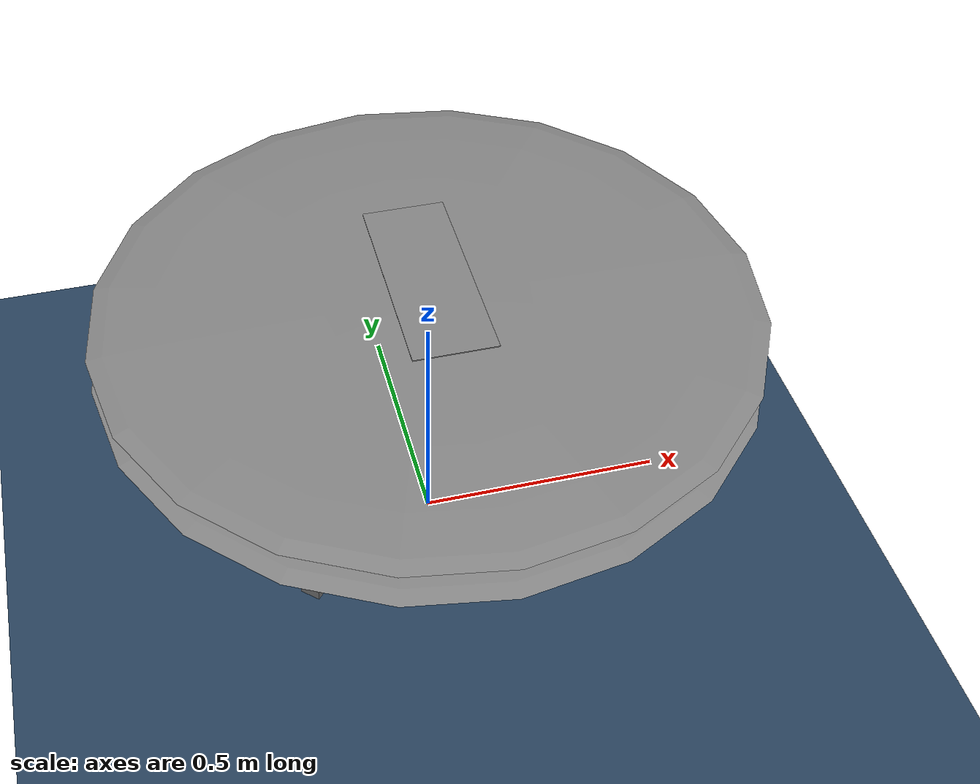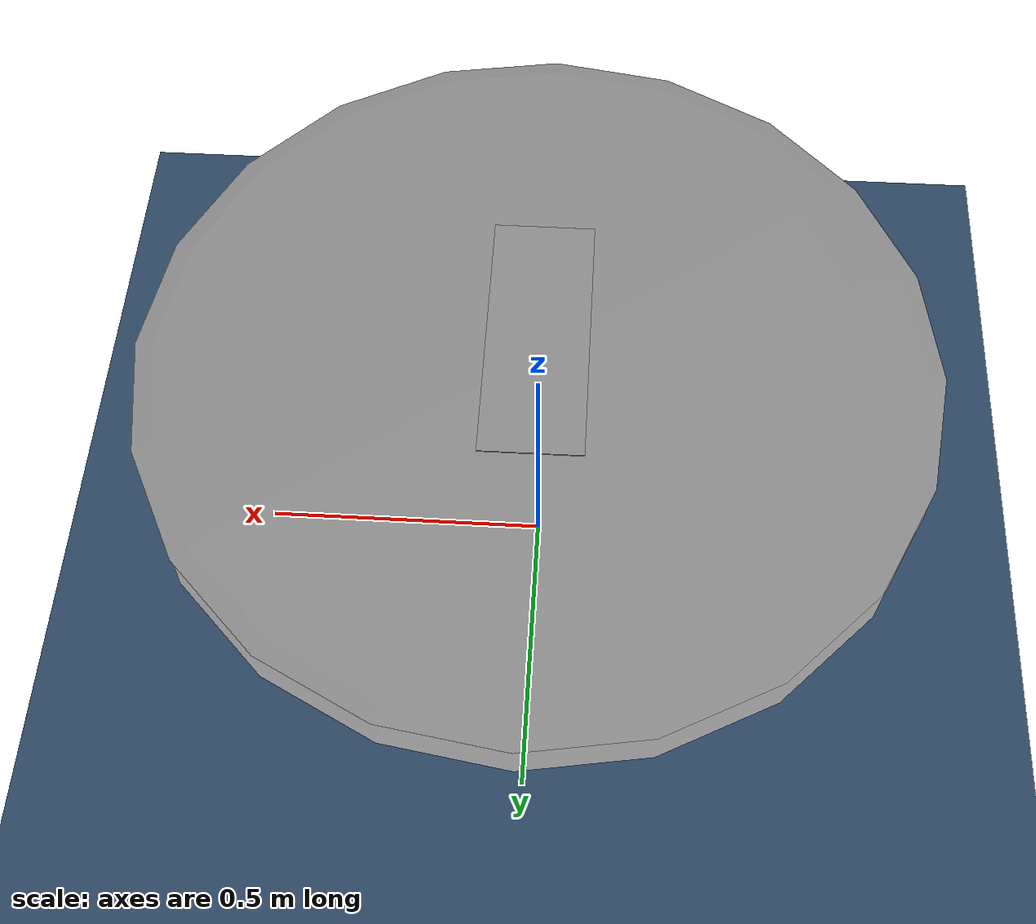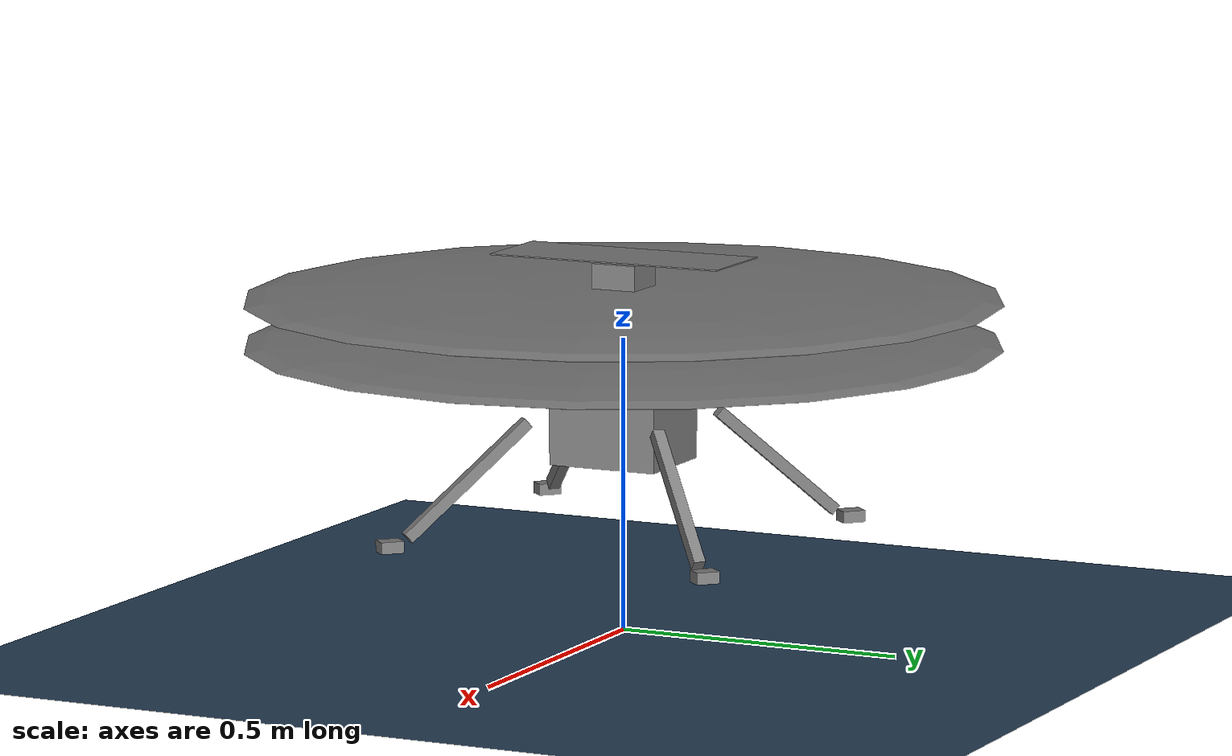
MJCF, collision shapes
<mujoco model="Ingenuity scene">
  <include file="mhs.xml"/>

  <statistic center="0 0 0.1" extent="0.6" meansize=".05"/>

  <visual>
    <headlight diffuse="0.6 0.6 0.6" ambient="0.3 0.3 0.3" specular="0 0 0"/>
    <rgba haze="0.15 0.25 0.35 1"/>
    <global azimuth="-20" elevation="-20" ellipsoidinertia="true"/>
  </visual>

  <asset>
    <texture type="skybox" builtin="gradient" rgb1="0.3 0.5 0.7" rgb2="0 0 0" width="512" height="3072"/>
    <texture type="2d" name="groundplane" builtin="checker" mark="edge" rgb1="0.2 0.3 0.4" rgb2="0.1 0.2 0.3"
      markrgb="0.8 0.8 0.8" width="300" height="300"/>
    <material name="groundplane" texture="groundplane" texuniform="true" texrepeat="5 5" reflectance="0.2"/>
  </asset>

  <worldbody>
    <light pos="0 0 1.5" dir="0 0 -1" directional="true"/>
    <geom name="floor" size="0 0 0.05" type="plane" material="groundplane"/>
  </worldbody>
</mujoco>

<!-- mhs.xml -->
<mujoco model="Ingenuity">
    <compiler assetdir="assets" autolimits="true"/>
    <option timestep="0.008" density="1.225" viscosity="1.8e-5"/>

    <default>
        <default class="ingenuity">
            <geom mass="0"/>
            <default class="visual">
                <geom group="2" type="mesh" contype="0" conaffinity="0"/>
            </default>
            <default class="collision">
                <geom group="3" type="box"/>
                <default class="rotor">
                    <geom type="ellipsoid"/>
                </default>
            </default>
        </default>
    </default>

    <asset>
        <texture type="2d" file="carbon.png"/>
        <material name="box" rgba="1 1 1 1"/>
        <material name="blades" texture="carbon" rgba="0.3 0.3 0.3 1"/>
        <material name="legs" rgba="0.05 0.05 0.05 0.8"/>

        <mesh name="mainBody" file="mhs_mainbody_v16.stl"/>
        <mesh name="topBlades" file="mhs_topblades_v16.stl"/>
        <mesh name="bottomBlades" file="mhs_bottomblades_v16.stl"/>
        <mesh name="leg01Blades" file="mhs_leg01_v16.stl"/>
        <mesh name="leg02Blades" file="mhs_leg02_v16.stl"/>
        <mesh name="leg03Blades" file="mhs_leg03_v16.stl"/>
        <mesh name="leg04Blades" file="mhs_leg04_v16.stl"/>
    </asset>

    <worldbody>
        <body name="ingenuity" pos="0 0 0.5" childclass="ingenuity">
            <freejoint/>
            <geom
                class="visual"
                material="box"
                mesh="mainBody"
                pos="0 0 0"
                quat="0 0 1 0"
            />
            <geom class="collision" mass="0.5"  size="0.084 0.097 0.065" pos="0 0 -0.145"/>
            <geom class="collision" mass="0.25" size="0.04 0.04 0.10" pos="0 0 0.03"/>
            <geom class="collision" mass="0.25" size="0.08 0.21 0.001" pos="0 0 0.14"/>
            <body name="leg2">
                <geom
                    class="visual"
                    material="legs"
                    mesh="leg02Blades"
                    pos="0.196 -0.1945 -0.215"
                    quat="0 0 1 0"
                />
                <geom
                    class="collision"
                    mass="0.05"
                    size="0.02 0.015 0.01"
                    pos="0.293 -0.29 -0.329"
                    quat="0.39 0 0 1"
                />
                <geom
                    class="collision"
                    mass="0.05"
                    size="0.01 0.01 0.14"
                    pos="0.196 -0.1945 -0.225"
                    quat="-0.4 -0.2 0.45 1"
                />
            </body>
            <body name="leg1">
                <geom
                    class="visual"
                    material="legs"
                    mesh="leg01Blades"
                    pos="-0.1945 -0.196 -0.215"
                    quat="0 0 1 0"
                />
                <geom
                    class="collision"
                    mass="0.05"
                    size="0.02 0.015 0.01"
                    pos="-0.293 -0.29 -0.329"
                    quat="0.39 0 0 1"
                />
                <geom
                    class="collision"
                    mass="0.05"
                    size="0.01 0.01 0.14"
                    pos="-0.196 -0.1945 -0.225"
                    quat="0.4 0.2 0.45 1"
                />
            </body>
            <body name="leg3">
                <geom
                    class="visual"
                    material="legs"
                    mesh="leg03Blades"
                    pos="0.1945 0.196 -0.215"
                    quat="0 0 1 0"
                />
                <geom
                    class="collision"
                    mass="0.05"
                    size="0.02 0.015 0.01"
                    pos="0.293 0.29 -0.329"
                    quat="0.39 0 0 1"
                />
                <geom
                    class="collision"
                    mass="0.05"
                    size="0.01 0.01 0.14"
                    pos="0.196 0.1945 -0.225"
                    quat="0.4 -0.2 -0.45 1"
                />
            </body>
            <body name="leg4">
                <geom
                    class="visual"
                    material="legs"
                    mesh="leg04Blades"
                    pos="-0.196 0.1945 -0.215"
                    quat="0 0 1 0"
                />
                <geom
                    class="collision"
                    mass="0.05"
                    size="0.02 0.015 0.01"
                    pos="-0.293 0.29 -0.329"
                    quat="0.39 0 0 1"
                />
                <geom
                    class="collision"
                    mass="0.05"
                    size="0.01 0.01 0.14"
                    pos="-0.196 0.1945 -0.225"
                    quat="-0.4 0.2 -0.45 1"
                />
            </body>
            <body name="blades" quat="0 0 1 0">
                <geom
                    class="visual"
                    material="blades"
                    mesh="topBlades"
                    pos="0 0 -0.0675"
                />
                <geom
                    class="visual"
                    material="blades"
                    mesh="bottomBlades"
                    pos="0 0 0.0092"
                    quat="0.6 0 0 1"
                />
                <geom class="rotor" mass="0.2" pos="0 0 -0.0675" size="0.64 0.64 0.02"/>
                <geom class="rotor" mass="0.2" pos="0 0 0.0092" size="0.64 0.64 0.02"/>
                <site name="thrust1" pos="0 0 -0.0830" quat="0 0 1 0"/>
                <site name="thrust2" pos="0 0 0.0150" quat="0 0 1 0"/>
            </body>

            <camera name="nav_cam" pos="0.08 0 -0.22" mode="fixed" xyaxes="0 -1 0 1 -1 1"/>
            <site name="imu"/>
            <site name="laser_rangefinder" pos="0 0 -0.22" quat="0 0 1 0"/>
            <site name="thrustxy"/>
        </body>
    </worldbody>

    <actuator>
        <motor name="thrust1" site="thrust1" ctrlrange="-1 1" gear="0 0 50 0 0 0"/>
        <motor name="thrust2" site="thrust2" ctrlrange="-1 1" gear="0 0 50 0 0 0"/>
        <motor name="x_movement" site="thrustxy" ctrlrange="-1 1" gear="0 0 0 0.09 0 0"/>
        <motor name="y_movement" site="thrustxy" ctrlrange="-1 1" gear="0 0 0 0 0.09 0"/>
    </actuator>

    <sensor>
        <rangefinder name="sensor_laser" site="laser_rangefinder"/>
        <gyro name="sensor_gyro" site="imu"/>
        <accelerometer name="sensor_acc" site="imu"/>
        <framequat name="sensor_quat" objtype="site" objname="imu"/>
    </sensor>
</mujoco>
